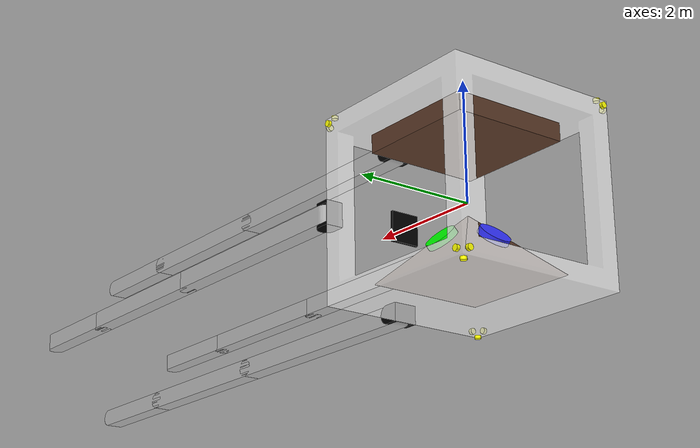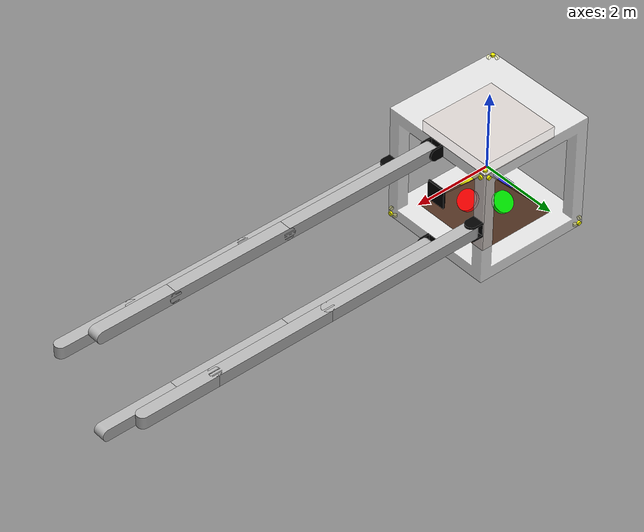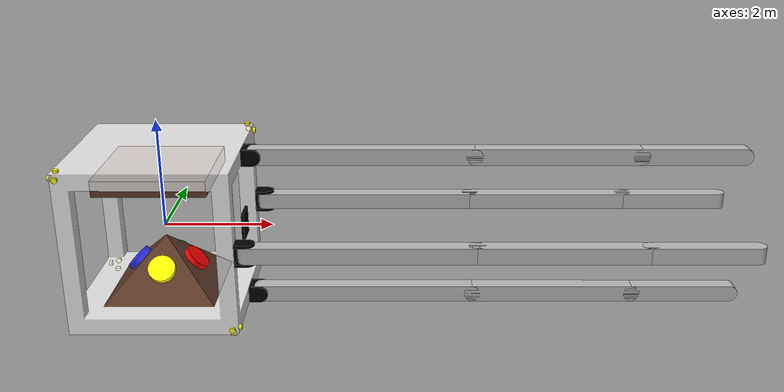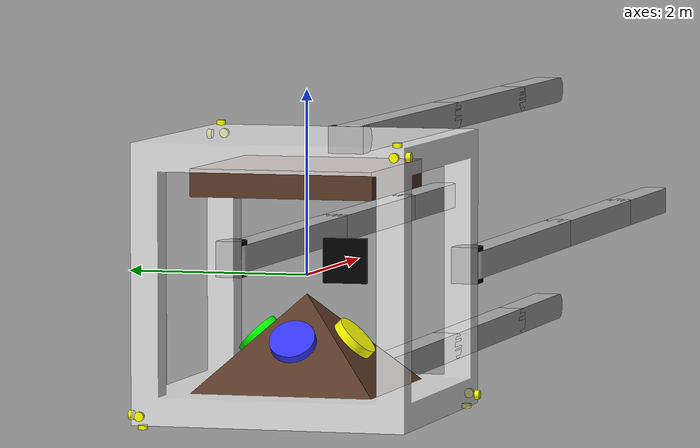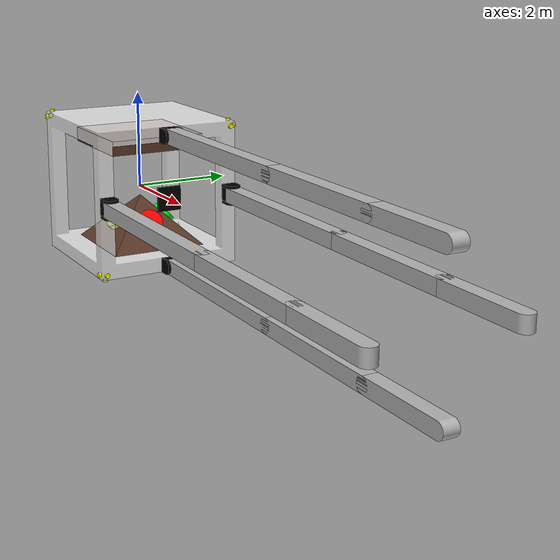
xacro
<?xml version="1.0"?>
<robot xmlns:xacro="http://www.ros.org/wiki/xacro" name="satellite">

  <xacro:include filename="$(find satellite_description)/xacro/common_properties.xacro"/>

  <xacro:property name="PI"                         value="3.1415926535897931"/>

  <plugin name="satellite_plugin" filename="libsatellite_plugin.so">
  </plugin>

  <link name="bus_frame">
    <inertial>
      <origin xyz="0 0 0" rpy="0 0 0"/>
      <mass value="${bus_frame_mass}"/>
      <inertia
              ixx="${(bus_frame_mass/6)*bus_frame_length*bus_frame_length}"
              iyy="${(bus_frame_mass/6)*bus_frame_length*bus_frame_length}"
              izz="${(bus_frame_mass/6)*bus_frame_length*bus_frame_length}"
              ixy="0.0" iyz="0.0" ixz="0.0"/>
    </inertial>
    <visual>
      <origin xyz="0.0 0.0 0.0" rpy="0 0 0"/>
      <geometry>
        <mesh filename="file://$(find satellite_description)/meshes/bus_frame.stl" scale="1 1 1"/>
      </geometry>
      <material name="white"/>
    </visual>
    <collision>
      <origin xyz="0.0 0.0 0.0" rpy="0 0 0"/>
      <geometry>
        <mesh filename="file://$(find satellite_description)/meshes/bus_frame.stl" scale="1 1 1"/>
      </geometry>
    </collision>
  </link>
  <link name="rw_mount">
    <inertial>
      <origin xyz="0 0 0" rpy="0 0 0"/>
      <mass value="${rw_mount_mass}"/>
      <inertia ixx="${(rw_mount_mass/20)*(4*rw_mount_height*rw_mount_height+rw_mount_width*rw_mount_width)}"
              iyy="${(rw_mount_mass/20)*(4*rw_mount_height*rw_mount_height+rw_mount_width*rw_mount_width)}"
              izz="${(rw_mount_mass/10)*(rw_mount_width*rw_mount_width)}"
              ixy="0.0" iyz="0.0" ixz="0.0"/>
    </inertial>
    <visual>
      <origin xyz="0.0 0.0 0.0" rpy="0 0 0"/>
      <geometry>
        <mesh filename="file://$(find satellite_description)/meshes/reaction_wheel_mount.stl" scale="1 1 1"/>
      </geometry>
      <material name="brown"/>
    </visual>
    <collision>
      <origin xyz="0.0 0.0 0.0" rpy="0 0 0"/>
      <geometry>
        <mesh filename="file://$(find satellite_description)/meshes/reaction_wheel_mount.stl" scale="1 1 1"/>
      </geometry>
    </collision>
  </link>
  <joint name="rw_mount_joint" type="fixed">
    <origin xyz="0 0 -${rw_mount_height-bus_frame_thickness}" rpy="0.0 0.0 0.0"/>
    <parent link="bus_frame"/>
    <child link="rw_mount"/>
  </joint>
  <link name="rw_front">
    <inertial>
      <origin xyz="0 0 0" rpy="0 0 0"/>
      <mass value="${rw_mass}"/>
      <inertia ixx="${(rw_mass/12)*(3*rw_radius*rw_radius+rw_height*rw_height)}"
              iyy="${(rw_mass/12)*(3*rw_radius*rw_radius+rw_height*rw_height)}"
              izz="${(rw_mass/2)*rw_radius*rw_radius}"
              ixy="0.0" iyz="0.0" ixz="0.0"/>
    </inertial>
    <visual>
      <origin xyz="0.0 0.0 0.0" rpy="0 0 0"/>
      <geometry>
        <mesh filename="file://$(find satellite_description)/meshes/reaction_wheel.stl" scale="1 1 1"/>
      </geometry>
      <material name="red"/>
    </visual>
    <collision>
      <origin xyz="0.0 0.0 0.0" rpy="0 0 0"/>
      <geometry>
        <mesh filename="file://$(find satellite_description)/meshes/reaction_wheel.stl" scale="1 1 1"/>
      </geometry>
    </collision>
  </link>
  <joint name="rw_front_joint" type="continuous">
    <origin xyz="${rw_mount_width/4} 0 0" rpy="0.0 ${pi/4} 0.0"/>
    <parent link="rw_mount"/>
    <child link="rw_front"/>
    <axis xyz="0 0 1"/>
  </joint>
  <link name="rw_left">
    <inertial>
      <origin xyz="0 0 0" rpy="0 0 0"/>
      <mass value="${rw_mass}"/>
      <inertia ixx="${(rw_mass/12)*(3*rw_radius*rw_radius+rw_height*rw_height)}"
              iyy="${(rw_mass/12)*(3*rw_radius*rw_radius+rw_height*rw_height)}"
              izz="${(rw_mass/2)*rw_radius*rw_radius}"
              ixy="0.0" iyz="0.0" ixz="0.0"/>
    </inertial>
    <visual>
      <origin xyz="0.0 0.0 0.0" rpy="0 0 0"/>
      <geometry>
        <mesh filename="file://$(find satellite_description)/meshes/reaction_wheel.stl" scale="1 1 1"/>
      </geometry>
      <material name="green"/>
    </visual>
    <collision>
      <origin xyz="0.0 0.0 0.0" rpy="0 0 0"/>
      <geometry>
        <mesh filename="file://$(find satellite_description)/meshes/reaction_wheel.stl" scale="1 1 1"/>
      </geometry>
    </collision>
  </link>
  <joint name="rw_left_joint" type="continuous">
    <origin xyz="0 ${rw_mount_width/4} 0" rpy="-${pi/4} 0.0 0.0"/>
    <parent link="rw_mount"/>
    <child link="rw_left"/>
    <axis xyz="0 0 1"/>
  </joint>
  <link name="rw_back">
    <inertial>
      <origin xyz="0 0 0" rpy="0 0 0"/>
      <mass value="${rw_mass}"/>
      <inertia ixx="${(rw_mass/12)*(3*rw_radius*rw_radius+rw_height*rw_height)}"
              iyy="${(rw_mass/12)*(3*rw_radius*rw_radius+rw_height*rw_height)}"
              izz="${(rw_mass/2)*rw_radius*rw_radius}"
              ixy="0.0" iyz="0.0" ixz="0.0"/>
    </inertial>
    <visual>
      <origin xyz="0.0 0.0 0.0" rpy="0 0 0"/>
      <geometry>
        <mesh filename="file://$(find satellite_description)/meshes/reaction_wheel.stl" scale="1 1 1"/>
      </geometry>
      <material name="blue"/>
    </visual>
    <collision>
      <origin xyz="0.0 0.0 0.0" rpy="0 0 0"/>
      <geometry>
        <mesh filename="file://$(find satellite_description)/meshes/reaction_wheel.stl" scale="1 1 1"/>
      </geometry>
    </collision>
  </link>
  <joint name="rw_back_joint" type="continuous">
    <origin xyz="-${rw_mount_width/4} 0 0" rpy="0.0 -${pi/4} 0.0"/>
    <parent link="rw_mount"/>
    <child link="rw_back"/>
    <axis xyz="0 0 1"/>
  </joint>
  <link name="rw_right">
    <inertial>
      <origin xyz="0 0 0" rpy="0 0 0"/>
      <mass value="${rw_mass}"/>
      <inertia ixx="${(rw_mass/12)*(3*rw_radius*rw_radius+rw_height*rw_height)}"
              iyy="${(rw_mass/12)*(3*rw_radius*rw_radius+rw_height*rw_height)}"
              izz="${(rw_mass/2)*rw_radius*rw_radius}"
              ixy="0.0" iyz="0.0" ixz="0.0"/>
    </inertial>
    <visual>
      <origin xyz="0.0 0.0 0.0" rpy="0 0 0"/>
      <geometry>
        <mesh filename="file://$(find satellite_description)/meshes/reaction_wheel.stl" scale="1 1 1"/>
      </geometry>
      <material name="yellow"/>
    </visual>
    <collision>
      <origin xyz="0.0 0.0 0.0" rpy="0 0 0"/>
      <geometry>
        <mesh filename="file://$(find satellite_description)/meshes/reaction_wheel.stl" scale="1 1 1"/>
      </geometry>
    </collision>
  </link>
  <joint name="rw_right_joint" type="continuous">
    <origin xyz="0 -${rw_mount_width/4} 0" rpy="${pi/4} 0.0 0.0"/>
    <parent link="rw_mount"/>
    <child link="rw_right"/>
    <axis xyz="0 0 1"/>
  </joint>
  <link name="dummy">
    <inertial>
      <origin xyz="0 0 0" rpy="0 0 0"/>
      <mass value="${dummy_mass}"/>
      <inertia
              ixx="${(dummy_mass/12)*(dummy_width*dummy_width+dummy_height*dummy_height)}"
              iyy="${(dummy_mass/12)*(dummy_width*dummy_width+dummy_height*dummy_height)}"
              izz="${(dummy_mass/12)*(dummy_width*dummy_width+dummy_width*dummy_width)}"
              ixy="0.0" iyz="0.0" ixz="0.0"/>
    </inertial>
    <visual>
      <origin xyz="0.0 0.0 0.0" rpy="0 0 0"/>
      <geometry>
        <mesh filename="file://$(find satellite_description)/meshes/dummy.stl" scale="1 1 1"/>
      </geometry>
      <material name="brown"/>
    </visual>
    <collision>
      <origin xyz="0.0 0.0 0.0" rpy="0 0 0"/>
      <geometry>
        <mesh filename="file://$(find satellite_description)/meshes/dummy.stl" scale="1 1 1"/>
      </geometry>
    </collision>
  </link>
  <joint name="dummy_joint" type="fixed">
    <origin xyz="0 0 ${bus_frame_length/2-bus_frame_thickness-dummy_height/2}" rpy="0 0.0 0.0"/>
    <parent link="bus_frame"/>
    <child link="dummy"/>
  </joint>
  <link name="thru_1">
    <inertial>
      <origin xyz="0 0 0" rpy="0 0 0"/>
      <mass value="${thruster_mass}"/>
      <inertia
        ixx="${(thruster_mass/12)*(3*thruster_radius*thruster_radius+thruster_height*thruster_height)}"
        iyy="${(thruster_mass/12)*(3*thruster_radius*thruster_radius+thruster_height*thruster_height)}"
        izz="${(thruster_mass/2)*thruster_radius*thruster_radius}"
        ixy="0.0" iyz="0.0" ixz="0.0"/>
    </inertial>
    <visual>
      <origin xyz="0.0 0.0 0.0" rpy="0 0 0"/>
      <geometry>
        <mesh filename="file://$(find satellite_description)/meshes/thruster.stl" scale="1 1 1"/>
      </geometry>
      <material name="yellow"/>
    </visual>
    <collision>
      <origin xyz="0.0 0.0 0.0" rpy="0 0 0"/>
      <geometry>
        <mesh filename="file://$(find satellite_description)/meshes/thruster.stl" scale="1 1 1"/>
      </geometry>
    </collision>
  </link>
  <joint name="thru_1_joint" type="fixed">
    <origin xyz=" ${bus_frame_length/2+thruster_height/2}
                  ${bus_frame_length/2-thruster_bias}
                  ${bus_frame_length/2-thruster_bias}"
            rpy="0.0 ${pi/2} 0.0"/>
    <parent link="bus_frame"/>
    <child link="thru_1"/>
  </joint>
  <link name="thru_2">
    <inertial>
      <origin xyz="0 0 0" rpy="0 0 0"/>
      <mass value="${thruster_mass}"/>
      <inertia
        ixx="${(thruster_mass/12)*(3*thruster_radius*thruster_radius+thruster_height*thruster_height)}"
        iyy="${(thruster_mass/12)*(3*thruster_radius*thruster_radius+thruster_height*thruster_height)}"
        izz="${(thruster_mass/2)*thruster_radius*thruster_radius}"
        ixy="0.0" iyz="0.0" ixz="0.0"/>
    </inertial>
    <visual>
      <origin xyz="0.0 0.0 0.0" rpy="0 0 0"/>
      <geometry>
        <mesh filename="file://$(find satellite_description)/meshes/thruster.stl" scale="1 1 1"/>
      </geometry>
      <material name="yellow"/>
    </visual>
    <collision>
      <origin xyz="0.0 0.0 0.0" rpy="0 0 0"/>
      <geometry>
        <mesh filename="file://$(find satellite_description)/meshes/thruster.stl" scale="1 1 1"/>
      </geometry>
    </collision>
  </link>
  <joint name="thru_2_joint" type="fixed">
    <origin xyz=" ${bus_frame_length/2-thruster_bias}
                  ${bus_frame_length/2+thruster_height/2}
                  ${bus_frame_length/2-thruster_bias}"
            rpy="0.0 ${pi/2} ${pi/2}"/>
    <parent link="bus_frame"/>
    <child link="thru_2"/>
  </joint>
  <link name="thru_3">
    <inertial>
      <origin xyz="0 0 0" rpy="0 0 0"/>
      <mass value="${thruster_mass}"/>
      <inertia
        ixx="${(thruster_mass/12)*(3*thruster_radius*thruster_radius+thruster_height*thruster_height)}"
        iyy="${(thruster_mass/12)*(3*thruster_radius*thruster_radius+thruster_height*thruster_height)}"
        izz="${(thruster_mass/2)*thruster_radius*thruster_radius}"
        ixy="0.0" iyz="0.0" ixz="0.0"/>
    </inertial>
    <visual>
      <origin xyz="0.0 0.0 0.0" rpy="0 0 0"/>
      <geometry>
        <mesh filename="file://$(find satellite_description)/meshes/thruster.stl" scale="1 1 1"/>
      </geometry>
      <material name="yellow"/>
    </visual>
    <collision>
      <origin xyz="0.0 0.0 0.0" rpy="0 0 0"/>
      <geometry>
        <mesh filename="file://$(find satellite_description)/meshes/thruster.stl" scale="1 1 1"/>
      </geometry>
    </collision>
  </link>
  <joint name="thru_3_joint" type="fixed">
    <origin xyz=" ${bus_frame_length/2-thruster_bias}
                  ${bus_frame_length/2-thruster_bias}
                  ${bus_frame_length/2+thruster_height/2}"
            rpy="0.0 0.0 0.0"/>
    <parent link="bus_frame"/>
    <child link="thru_3"/>
  </joint>
  <link name="thru_4">
    <inertial>
      <origin xyz="0 0 0" rpy="0 0 0"/>
      <mass value="${thruster_mass}"/>
      <inertia
        ixx="${(thruster_mass/12)*(3*thruster_radius*thruster_radius+thruster_height*thruster_height)}"
        iyy="${(thruster_mass/12)*(3*thruster_radius*thruster_radius+thruster_height*thruster_height)}"
        izz="${(thruster_mass/2)*thruster_radius*thruster_radius}"
        ixy="0.0" iyz="0.0" ixz="0.0"/>
    </inertial>
    <visual>
      <origin xyz="0.0 0.0 0.0" rpy="0 0 0"/>
      <geometry>
        <mesh filename="file://$(find satellite_description)/meshes/thruster.stl" scale="1 1 1"/>
      </geometry>
      <material name="yellow"/>
    </visual>
    <collision>
      <origin xyz="0.0 0.0 0.0" rpy="0 0 0"/>
      <geometry>
        <mesh filename="file://$(find satellite_description)/meshes/thruster.stl" scale="1 1 1"/>
      </geometry>
    </collision>
  </link>
  <joint name="thru_4_joint" type="fixed">
    <origin xyz=" -${bus_frame_length/2+thruster_height/2}
                  ${bus_frame_length/2-thruster_bias}
                  -${bus_frame_length/2-thruster_bias}"

            rpy="0.0 -${pi/2} 0.0"/>
    <parent link="bus_frame"/>
    <child link="thru_4"/>
  </joint>
  <link name="thru_5">
    <inertial>
      <origin xyz="0 0 0" rpy="0 0 0"/>
      <mass value="${thruster_mass}"/>
      <inertia
        ixx="${(thruster_mass/12)*(3*thruster_radius*thruster_radius+thruster_height*thruster_height)}"
        iyy="${(thruster_mass/12)*(3*thruster_radius*thruster_radius+thruster_height*thruster_height)}"
        izz="${(thruster_mass/2)*thruster_radius*thruster_radius}"
        ixy="0.0" iyz="0.0" ixz="0.0"/>
    </inertial>
    <visual>
      <origin xyz="0.0 0.0 0.0" rpy="0 0 0"/>
      <geometry>
        <mesh filename="file://$(find satellite_description)/meshes/thruster.stl" scale="1 1 1"/>
      </geometry>
      <material name="yellow"/>
    </visual>
    <collision>
      <origin xyz="0.0 0.0 0.0" rpy="0 0 0"/>
      <geometry>
        <mesh filename="file://$(find satellite_description)/meshes/thruster.stl" scale="1 1 1"/>
      </geometry>
    </collision>
  </link>
  <joint name="thru_5_joint" type="fixed">
    <origin xyz=" -${bus_frame_length/2-thruster_bias}
                  ${bus_frame_length/2+thruster_height/2}
                  -${bus_frame_length/2-thruster_bias}"

            rpy="-${pi/2} 0.0 0.0"/>
    <parent link="bus_frame"/>
    <child link="thru_5"/>
  </joint>
  <link name="thru_6">
    <inertial>
      <origin xyz="0 0 0" rpy="0 0 0"/>
      <mass value="${thruster_mass}"/>
      <inertia
        ixx="${(thruster_mass/12)*(3*thruster_radius*thruster_radius+thruster_height*thruster_height)}"
        iyy="${(thruster_mass/12)*(3*thruster_radius*thruster_radius+thruster_height*thruster_height)}"
        izz="${(thruster_mass/2)*thruster_radius*thruster_radius}"
        ixy="0.0" iyz="0.0" ixz="0.0"/>
    </inertial>
    <visual>
      <origin xyz="0.0 0.0 0.0" rpy="0 0 0"/>
      <geometry>
        <mesh filename="file://$(find satellite_description)/meshes/thruster.stl" scale="1 1 1"/>
      </geometry>
      <material name="yellow"/>
    </visual>
    <collision>
      <origin xyz="0.0 0.0 0.0" rpy="0 0 0"/>
      <geometry>
        <mesh filename="file://$(find satellite_description)/meshes/thruster.stl" scale="1 1 1"/>
      </geometry>
    </collision>
  </link>
  <joint name="thru_6_joint" type="fixed">
    <origin xyz=" -${bus_frame_length/2-thruster_bias}
                  ${bus_frame_length/2-thruster_bias}
                  -${bus_frame_length/2+thruster_height/2}"
            rpy="0.0 -${pi} 0.0"/>
    <parent link="bus_frame"/>
    <child link="thru_6"/>
  </joint>
  <link name="thru_7">
    <inertial>
      <origin xyz="0 0 0" rpy="0 0 0"/>
      <mass value="${thruster_mass}"/>
      <inertia
        ixx="${(thruster_mass/12)*(3*thruster_radius*thruster_radius+thruster_height*thruster_height)}"
        iyy="${(thruster_mass/12)*(3*thruster_radius*thruster_radius+thruster_height*thruster_height)}"
        izz="${(thruster_mass/2)*thruster_radius*thruster_radius}"
        ixy="0.0" iyz="0.0" ixz="0.0"/>
    </inertial>
    <visual>
      <origin xyz="0.0 0.0 0.0" rpy="0 0 0"/>
      <geometry>
        <mesh filename="file://$(find satellite_description)/meshes/thruster.stl" scale="1 1 1"/>
      </geometry>
      <material name="yellow"/>
    </visual>
    <collision>
      <origin xyz="0.0 0.0 0.0" rpy="0 0 0"/>
      <geometry>
        <mesh filename="file://$(find satellite_description)/meshes/thruster.stl" scale="1 1 1"/>
      </geometry>
    </collision>
  </link>
  <joint name="thru_7_joint" type="fixed">
    <origin xyz=" -${bus_frame_length/2+thruster_height/2}
                  -${bus_frame_length/2-thruster_bias}
                  ${bus_frame_length/2-thruster_bias}
                  "
            rpy="0.0 -${pi/2} 0.0"/>
    <parent link="bus_frame"/>
    <child link="thru_7"/>
  </joint>
  <link name="thru_8">
    <inertial>
      <origin xyz="0 0 0" rpy="0 0 0"/>
      <mass value="${thruster_mass}"/>
      <inertia
        ixx="${(thruster_mass/12)*(3*thruster_radius*thruster_radius+thruster_height*thruster_height)}"
        iyy="${(thruster_mass/12)*(3*thruster_radius*thruster_radius+thruster_height*thruster_height)}"
        izz="${(thruster_mass/2)*thruster_radius*thruster_radius}"
        ixy="0.0" iyz="0.0" ixz="0.0"/>
    </inertial>
    <visual>
      <origin xyz="0.0 0.0 0.0" rpy="0 0 0"/>
      <geometry>
        <mesh filename="file://$(find satellite_description)/meshes/thruster.stl" scale="1 1 1"/>
      </geometry>
      <material name="yellow"/>
    </visual>
    <collision>
      <origin xyz="0.0 0.0 0.0" rpy="0 0 0"/>
      <geometry>
        <mesh filename="file://$(find satellite_description)/meshes/thruster.stl" scale="1 1 1"/>
      </geometry>
    </collision>
  </link>
  <joint name="thru_8_joint" type="fixed">
    <origin xyz=" -${bus_frame_length/2-thruster_bias}
                  -${bus_frame_length/2+thruster_height/2}
                  ${bus_frame_length/2-thruster_bias}
                  "
            rpy="${pi/2} 0.0 0.0"/>
    <parent link="bus_frame"/>
    <child link="thru_8"/>
  </joint>
  <link name="thru_9">
    <inertial>
      <origin xyz="0 0 0" rpy="0 0 0"/>
      <mass value="${thruster_mass}"/>
      <inertia
        ixx="${(thruster_mass/12)*(3*thruster_radius*thruster_radius+thruster_height*thruster_height)}"
        iyy="${(thruster_mass/12)*(3*thruster_radius*thruster_radius+thruster_height*thruster_height)}"
        izz="${(thruster_mass/2)*thruster_radius*thruster_radius}"
        ixy="0.0" iyz="0.0" ixz="0.0"/>
    </inertial>
    <visual>
      <origin xyz="0.0 0.0 0.0" rpy="0 0 0"/>
      <geometry>
        <mesh filename="file://$(find satellite_description)/meshes/thruster.stl" scale="1 1 1"/>
      </geometry>
      <material name="yellow"/>
    </visual>
    <collision>
      <origin xyz="0.0 0.0 0.0" rpy="0 0 0"/>
      <geometry>
        <mesh filename="file://$(find satellite_description)/meshes/thruster.stl" scale="1 1 1"/>
      </geometry>
    </collision>
  </link>
  <joint name="thru_9_joint" type="fixed">
    <origin xyz=" -${bus_frame_length/2-thruster_bias}
                  -${bus_frame_length/2-thruster_bias}
                  ${bus_frame_length/2+thruster_height/2}
                  "
            rpy="0 0.0 0.0"/>
    <parent link="bus_frame"/>
    <child link="thru_9"/>
  </joint>
  <link name="thru_10">
    <inertial>
      <origin xyz="0 0 0" rpy="0 0 0"/>
      <mass value="${thruster_mass}"/>
      <inertia
        ixx="${(thruster_mass/12)*(3*thruster_radius*thruster_radius+thruster_height*thruster_height)}"
        iyy="${(thruster_mass/12)*(3*thruster_radius*thruster_radius+thruster_height*thruster_height)}"
        izz="${(thruster_mass/2)*thruster_radius*thruster_radius}"
        ixy="0.0" iyz="0.0" ixz="0.0"/>
    </inertial>
    <visual>
      <origin xyz="0.0 0.0 0.0" rpy="0 0 0"/>
      <geometry>
        <mesh filename="file://$(find satellite_description)/meshes/thruster.stl" scale="1 1 1"/>
      </geometry>
      <material name="yellow"/>
    </visual>
    <collision>
      <origin xyz="0.0 0.0 0.0" rpy="0 0 0"/>
      <geometry>
        <mesh filename="file://$(find satellite_description)/meshes/thruster.stl" scale="1 1 1"/>
      </geometry>
    </collision>
  </link>
  <joint name="thru_10_joint" type="fixed">
    <origin xyz=" ${bus_frame_length/2+thruster_height/2}
                  -${bus_frame_length/2-thruster_bias}
                  -${bus_frame_length/2-thruster_bias}
                  "
            rpy="0.0 ${pi/2} 0.0"/>
    <parent link="bus_frame"/>
    <child link="thru_10"/>
  </joint>
  <link name="thru_11">
    <inertial>
      <origin xyz="0 0 0" rpy="0 0 0"/>
      <mass value="${thruster_mass}"/>
      <inertia
        ixx="${(thruster_mass/12)*(3*thruster_radius*thruster_radius+thruster_height*thruster_height)}"
        iyy="${(thruster_mass/12)*(3*thruster_radius*thruster_radius+thruster_height*thruster_height)}"
        izz="${(thruster_mass/2)*thruster_radius*thruster_radius}"
        ixy="0.0" iyz="0.0" ixz="0.0"/>
    </inertial>
    <visual>
      <origin xyz="0.0 0.0 0.0" rpy="0 0 0"/>
      <geometry>
        <mesh filename="file://$(find satellite_description)/meshes/thruster.stl" scale="1 1 1"/>
      </geometry>
      <material name="yellow"/>
    </visual>
    <collision>
      <origin xyz="0.0 0.0 0.0" rpy="0 0 0"/>
      <geometry>
        <mesh filename="file://$(find satellite_description)/meshes/thruster.stl" scale="1 1 1"/>
      </geometry>
    </collision>
  </link>
  <joint name="thru_11_joint" type="fixed">
    <origin xyz=" ${bus_frame_length/2-thruster_bias}
                  -${bus_frame_length/2+thruster_height/2}
                  -${bus_frame_length/2-thruster_bias}
                  "
            rpy="${pi/2} 0.0 0.0"/>
    <parent link="bus_frame"/>
    <child link="thru_11"/>
  </joint>
  <link name="thru_12">
    <inertial>
      <origin xyz="0 0 0" rpy="0 0 0"/>
      <mass value="${thruster_mass}"/>
      <inertia
        ixx="${(thruster_mass/12)*(3*thruster_radius*thruster_radius+thruster_height*thruster_height)}"
        iyy="${(thruster_mass/12)*(3*thruster_radius*thruster_radius+thruster_height*thruster_height)}"
        izz="${(thruster_mass/2)*thruster_radius*thruster_radius}"
        ixy="0.0" iyz="0.0" ixz="0.0"/>
    </inertial>
    <visual>
      <origin xyz="0.0 0.0 0.0" rpy="0 0 0"/>
      <geometry>
        <mesh filename="file://$(find satellite_description)/meshes/thruster.stl" scale="1 1 1"/>
      </geometry>
      <material name="yellow"/>
    </visual>
    <collision>
      <origin xyz="0.0 0.0 0.0" rpy="0 0 0"/>
      <geometry>
        <mesh filename="file://$(find satellite_description)/meshes/thruster.stl" scale="1 1 1"/>
      </geometry>
    </collision>
  </link>
  <joint name="thru_12_joint" type="fixed">
    <origin xyz=" ${bus_frame_length/2-thruster_bias}
                  -${bus_frame_length/2-thruster_bias}
                  -${bus_frame_length/2+thruster_height/2}
                  "
            rpy="0.0 ${pi} 0.0"/>
    <parent link="bus_frame"/>
    <child link="thru_12"/>
  </joint>
  <link name="window_front">
    <inertial>
      <origin xyz="0 0 0" rpy="0 0 0"/>
      <mass value="${window_mass}"/>
      <inertia
          ixx="${(window_mass/12)*(window_length*window_length+window_length*window_length)}"
          iyy="${(window_mass/12)*(window_length*window_length+window_thickness*window_thickness)}"
          izz="${(window_mass/12)*(window_length*window_length+window_thickness*window_thickness)}"
          ixy="0.0" iyz="0.0" ixz="0.0"/>
    </inertial>
    <collision>
      <origin xyz="0.0 0.0 0.0" rpy="0 0 0"/>
      <geometry>
        <mesh filename="file://$(find satellite_description)/meshes/window.stl" scale="1 1 1"/>
      </geometry>
    </collision>
  </link>
  <joint name="window_front_joint" type="fixed">
    <origin xyz="${bus_frame_length/2-window_thickness/2}
                  0.0
                  0.0"
            rpy="0.0 0.0 0.0"/>
    <parent link="bus_frame"/>
    <child link="window_front"/>
  </joint>
  <link name="window_left">
    <inertial>
      <origin xyz="0 0 0" rpy="0 0 0"/>
      <mass value="${window_mass}"/>
      <inertia
          ixx="${(window_mass/12)*(window_length*window_length+window_length*window_length)}"
          iyy="${(window_mass/12)*(window_length*window_length+window_thickness*window_thickness)}"
          izz="${(window_mass/12)*(window_length*window_length+window_thickness*window_thickness)}"
          ixy="0.0" iyz="0.0" ixz="0.0"/>
    </inertial>
    <collision>
      <origin xyz="0.0 0.0 0.0" rpy="0 0 0"/>
      <geometry>
        <mesh filename="file://$(find satellite_description)/meshes/window.stl" scale="1 1 1"/>
      </geometry>
    </collision>
  </link>
  <joint name="window_left_joint" type="fixed">
    <origin xyz=" 0.0
                  ${bus_frame_length/2-window_thickness/2}
                  0.0"
            rpy="0.0 0.0 ${pi/2}"/>
    <parent link="bus_frame"/>
    <child link="window_left"/>
  </joint>
  <link name="window_back">
    <inertial>
      <origin xyz="0 0 0" rpy="0 0 0"/>
      <mass value="${window_mass}"/>
      <inertia
          ixx="${(window_mass/12)*(window_length*window_length+window_length*window_length)}"
          iyy="${(window_mass/12)*(window_length*window_length+window_thickness*window_thickness)}"
          izz="${(window_mass/12)*(window_length*window_length+window_thickness*window_thickness)}"
          ixy="0.0" iyz="0.0" ixz="0.0"/>
    </inertial>
    <collision>
      <origin xyz="0.0 0.0 0.0" rpy="0 0 0"/>
      <geometry>
        <mesh filename="file://$(find satellite_description)/meshes/window.stl" scale="1 1 1"/>
      </geometry>
    </collision>
  </link>
  <joint name="window_back_joint" type="fixed">
    <origin xyz=" -${bus_frame_length/2-window_thickness/2}
                  0.0
                  0.0"
            rpy="0.0 0.0 ${pi}"/>
    <parent link="bus_frame" />
    <child link="window_back"/>
  </joint>
  <link name="window_right">
    <inertial>
      <origin xyz="0 0 0" rpy="0 0 0"/>
      <mass value="${window_mass}"/>
      <inertia
          ixx="${(window_mass/12)*(window_length*window_length+window_length*window_length)}"
          iyy="${(window_mass/12)*(window_length*window_length+window_thickness*window_thickness)}"
          izz="${(window_mass/12)*(window_length*window_length+window_thickness*window_thickness)}"
          ixy="0.0" iyz="0.0" ixz="0.0"/>
    </inertial>
    <collision>
      <origin xyz="0.0 0.0 0.0" rpy="0 0 0"/>
      <geometry>
        <mesh filename="file://$(find satellite_description)/meshes/window.stl" scale="1 1 1"/>
      </geometry>
    </collision>
  </link>
  <joint name="window_right_joint" type="fixed">
    <origin xyz=" 0.0
                  -${bus_frame_length/2-window_thickness/2}
                  0.0"
            rpy="0.0 0.0 -${pi/2}"/>
    <parent link="bus_frame" />
    <child link="window_right"/>
  </joint>
  <link name="bus_camera">
    <inertial>
      <origin xyz="0 0 0" rpy="0 0 0"/>
      <mass value="${bus_camera_mass}"/>
      <inertia
          ixx="${(bus_camera_mass/12)*(bus_camera_length*bus_camera_length+bus_camera_height*bus_camera_height)}"
          iyy="${(bus_camera_mass/12)*(bus_camera_length*bus_camera_length+bus_camera_height*bus_camera_height)}"
          izz="${(bus_camera_mass/12)*(bus_camera_length*bus_camera_length+bus_camera_length*bus_camera_length)}"
          ixy="0.0" iyz="0.0" ixz="0.0"/>
    </inertial>
    <visual>
      <origin xyz="0.0 0.0 0.0" rpy="0 0 0"/>
      <geometry>
        <mesh filename="file://$(find satellite_description)/meshes/bus_camera.stl" scale="1 1 1"/>
      </geometry>
      <material name="black"/>
    </visual>
    <collision>
      <origin xyz="0.0 0.0 0.0" rpy="0 0 0"/>
      <geometry>
        <mesh filename="file://$(find satellite_description)/meshes/bus_camera.stl" scale="1 1 1"/>
      </geometry>
    </collision>
  </link>
  <joint name="bus_camera_joint" type="revolute">
    <origin xyz=" ${window_thickness/2-bus_camera_height/2}
                  0.0
                  0.0"
            rpy="0.0 0.0 0.0"/>
    <limit effort="25" lower="-${pi/2}" upper="${pi/2}" velocity="1.5" />
    <axis xyz="0.0 0.0 -1.0"/>
    <parent link="window_front" />
    <child link="bus_camera"/>
  </joint>
  <link name="arm_mount_top">
    <inertial>
      <origin xyz="0 0 0" rpy="0 0 0"/>
      <mass value="${arm_mount_mass}"/>
      <inertia
          ixx="${arm_mount_ixx}"
          iyy="${arm_mount_iyy}"
          izz="${arm_mount_izz}"
          ixy="0.0" iyz="0.0" ixz="0.0"/>
    </inertial>
    <visual>
      <origin xyz="0.0 0.0 0.0" rpy="0 0 0"/>
      <geometry>
        <mesh filename="file://$(find satellite_description)/meshes/arm_mount.stl" scale="1 1 1"/>
      </geometry>
      <material name="black"/>
    </visual>
    <collision>
      <origin xyz="0.0 0.0 0.0" rpy="0 0 0"/>
      <geometry>
        <mesh filename="file://$(find satellite_description)/meshes/arm_mount.stl" scale="1 1 1"/>
      </geometry>
    </collision>
  </link>
  <joint name="arm_mount_top_joint" type="fixed">
    <origin xyz=" ${bus_frame_length/2+arm_mount_bias}
                  0.0
                  ${bus_frame_length/2-bus_frame_thickness/2}"
            rpy="${pi/2} 0.0 0.0"/>
    <parent link="bus_frame" />
    <child link="arm_mount_top"/>
  </joint>
  <link name="arm_link_1_top">
    <inertial>
      <origin xyz="0 0 0" rpy="0 0 0"/>
      <mass value="${arm_link_1_mass}"/>
      <inertia
          ixx="${arm_link_1_ixx}"
          iyy="${arm_link_1_iyy}"
          izz="${arm_link_1_izz}"
          ixy="0.0" iyz="0.0" ixz="0.0"/>
    </inertial>
    <visual>
      <origin xyz="0.0 0.0 0.0" rpy="0 0 0"/>
      <geometry>
        <mesh filename="file://$(find satellite_description)/meshes/arm_link_1.stl" scale="1 1 1"/>
      </geometry>
      <material name="grey"/>
    </visual>
    <collision>
      <origin xyz="0.0 0.0 0.0" rpy="0 0 0"/>
      <geometry>
        <mesh filename="file://$(find satellite_description)/meshes/arm_link_1.stl" scale="1 1 1"/>
      </geometry>
    </collision>
  </link>
  <joint name="arm_link_1_top_joint" type="revolute">
    <origin xyz=" ${arm_mount_bias}
                  0.0
                  0.0"
            rpy="0.0 0.0 0.0"/>
    <parent link="arm_mount_top" />
    <child link="arm_link_1_top"/>
    <limit effort="25" lower="-${pi/2}" upper="${pi/2}" velocity="1.5" />
    <axis xyz="0.0 0.0 -1.0"/>
  </joint>
  <link name="arm_link_2_top">
    <inertial>
      <origin xyz="0 0 0" rpy="0 0 0"/>
      <mass value="${arm_link_2_mass}"/>
      <inertia
          ixx="${arm_link_2_ixx}"
          iyy="${arm_link_2_iyy}"
          izz="${arm_link_2_izz}"
          ixy="0.0" iyz="0.0" ixz="0.0"/>
    </inertial>
    <visual>
      <origin xyz="0.0 0.0 0.0" rpy="0 0 0"/>
      <geometry>
        <mesh filename="file://$(find satellite_description)/meshes/arm_link_2.stl" scale="1 1 1"/>
      </geometry>
      <material name="grey"/>
    </visual>
    <collision>
      <origin xyz="0.0 0.0 0.0" rpy="0 0 0"/>
      <geometry>
        <mesh filename="file://$(find satellite_description)/meshes/arm_link_2.stl" scale="1 1 1"/>
      </geometry>
    </collision>
  </link>
  <joint name="arm_link_2_top_joint" type="revolute">
    <origin xyz=" ${arm_link_1_length}
                  0.0
                  0.0"
            rpy="0.0 0.0 0.0"/>
    <parent link="arm_link_1_top" />
    <child link="arm_link_2_top"/>
    <limit effort="25" lower="-${pi/2}" upper="${pi/2}" velocity="1.5" />
    <axis xyz="0.0 0.0 -1.0"/>
  </joint>
  <link name="arm_link_3_top">
    <inertial>
      <origin xyz="0 0 0" rpy="0 0 0"/>
      <mass value="${arm_link_3_mass}"/>
      <inertia
          ixx="${arm_link_3_ixx}"
          iyy="${arm_link_3_iyy}"
          izz="${arm_link_3_izz}"
          ixy="0.0" iyz="0.0" ixz="0.0"/>
    </inertial>
    <visual>
      <origin xyz="0.0 0.0 0.0" rpy="0 0 0"/>
      <geometry>
        <mesh filename="file://$(find satellite_description)/meshes/arm_link_3.stl" scale="1 1 1"/>
      </geometry>
      <material name="grey"/>
    </visual>
    <collision>
      <origin xyz="0.0 0.0 0.0" rpy="0 0 0"/>
      <geometry>
        <mesh filename="file://$(find satellite_description)/meshes/arm_link_3.stl" scale="1 1 1"/>
      </geometry>
    </collision>
  </link>
  <joint name="arm_link_3_top_joint" type="revolute">
    <origin xyz=" ${arm_link_2_length}
                  0.0
                  0.0"
            rpy="0.0 0.0 0.0"/>
    <parent link="arm_link_2_top" />
    <child link="arm_link_3_top"/>
    <limit effort="25" lower="-${pi/2}" upper="${pi/2}" velocity="1.5" />
    <axis xyz="0.0 0.0 -1.0"/>
  </joint>

  <link name="arm_mount_left">
    <inertial>
      <origin xyz="0 0 0" rpy="0 0 0"/>
      <mass value="${arm_mount_mass}"/>
      <inertia
          ixx="${arm_mount_ixx}"
          iyy="${arm_mount_iyy}"
          izz="${arm_mount_izz}"
          ixy="0.0" iyz="0.0" ixz="0.0"/>
    </inertial>
    <visual>
      <origin xyz="0.0 0.0 0.0" rpy="0 0 0"/>
      <geometry>
        <mesh filename="file://$(find satellite_description)/meshes/arm_mount.stl" scale="1 1 1"/>
      </geometry>
      <material name="black"/>
    </visual>
    <collision>
      <origin xyz="0.0 0.0 0.0" rpy="0 0 0"/>
      <geometry>
        <mesh filename="file://$(find satellite_description)/meshes/arm_mount.stl" scale="1 1 1"/>
      </geometry>
    </collision>
  </link>
  <joint name="arm_mount_left_joint" type="fixed">
    <origin xyz=" ${bus_frame_length/2+arm_mount_bias}
                  ${bus_frame_length/2-bus_frame_thickness/2}
                  0"
            rpy="0.0 0.0 0.0"/>
    <parent link="bus_frame" />
    <child link="arm_mount_left"/>
  </joint>
  <link name="arm_link_1_left">
    <inertial>
      <origin xyz="0 0 0" rpy="0 0 0"/>
      <mass value="${arm_link_1_mass}"/>
      <inertia
          ixx="${arm_link_1_ixx}"
          iyy="${arm_link_1_iyy}"
          izz="${arm_link_1_izz}"
          ixy="0.0" iyz="0.0" ixz="0.0"/>
    </inertial>
    <visual>
      <origin xyz="0.0 0.0 0.0" rpy="0 0 0"/>
      <geometry>
        <mesh filename="file://$(find satellite_description)/meshes/arm_link_1.stl" scale="1 1 1"/>
      </geometry>
      <material name="grey"/>
    </visual>
    <collision>
      <origin xyz="0.0 0.0 0.0" rpy="0 0 0"/>
      <geometry>
        <mesh filename="file://$(find satellite_description)/meshes/arm_link_1.stl" scale="1 1 1"/>
      </geometry>
    </collision>
  </link>
  <joint name="arm_link_1_left_joint" type="revolute">
    <origin xyz=" ${arm_mount_bias}
                  0.0
                  0.0"
            rpy="0.0 0.0 0.0"/>
    <parent link="arm_mount_left" />
    <child link="arm_link_1_left"/>
    <limit effort="25" lower="-${pi/2}" upper="${pi/2}" velocity="1.5" />
    <axis xyz="0.0 0.0 -1.0"/>
  </joint>
  <link name="arm_link_2_left">
    <inertial>
      <origin xyz="0 0 0" rpy="0 0 0"/>
      <mass value="${arm_link_2_mass}"/>
      <inertia
          ixx="${arm_link_2_ixx}"
          iyy="${arm_link_2_iyy}"
          izz="${arm_link_2_izz}"
          ixy="0.0" iyz="0.0" ixz="0.0"/>
    </inertial>
    <visual>
      <origin xyz="0.0 0.0 0.0" rpy="0 0 0"/>
      <geometry>
        <mesh filename="file://$(find satellite_description)/meshes/arm_link_2.stl" scale="1 1 1"/>
      </geometry>
      <material name="grey"/>
    </visual>
    <collision>
      <origin xyz="0.0 0.0 0.0" rpy="0 0 0"/>
      <geometry>
        <mesh filename="file://$(find satellite_description)/meshes/arm_link_2.stl" scale="1 1 1"/>
      </geometry>
    </collision>
  </link>
  <joint name="arm_link_2_left_joint" type="revolute">
    <origin xyz=" ${arm_link_1_length}
                  0.0
                  0.0"
            rpy="0.0 0.0 0.0"/>
    <parent link="arm_link_1_left" />
    <child link="arm_link_2_left"/>
    <limit effort="25" lower="-${pi/2}" upper="${pi/2}" velocity="1.5" />
    <axis xyz="0.0 0.0 -1.0"/>
  </joint>
  <link name="arm_link_3_left">
    <inertial>
      <origin xyz="0 0 0" rpy="0 0 0"/>
      <mass value="${arm_link_3_mass}"/>
      <inertia
          ixx="${arm_link_3_ixx}"
          iyy="${arm_link_3_iyy}"
          izz="${arm_link_3_izz}"
          ixy="0.0" iyz="0.0" ixz="0.0"/>
    </inertial>
    <visual>
      <origin xyz="0.0 0.0 0.0" rpy="0 0 0"/>
      <geometry>
        <mesh filename="file://$(find satellite_description)/meshes/arm_link_3.stl" scale="1 1 1"/>
      </geometry>
      <material name="grey"/>
    </visual>
    <collision>
      <origin xyz="0.0 0.0 0.0" rpy="0 0 0"/>
      <geometry>
        <mesh filename="file://$(find satellite_description)/meshes/arm_link_3.stl" scale="1 1 1"/>
      </geometry>
    </collision>
  </link>
  <joint name="arm_link_3_left_joint" type="revolute">
    <origin xyz=" ${arm_link_2_length}
                  0.0
                  0.0"
            rpy="0.0 0.0 0.0"/>
    <parent link="arm_link_2_left" />
    <child link="arm_link_3_left"/>
    <limit effort="25" lower="-${pi/2}" upper="${pi/2}" velocity="1.5" />
    <axis xyz="0.0 0.0 -1.0"/>
  </joint>
  <link name="arm_mount_right">
    <inertial>
      <origin xyz="0 0 0" rpy="0 0 0"/>
      <mass value="${arm_mount_mass}"/>
      <inertia
          ixx="${arm_mount_ixx}"
          iyy="${arm_mount_iyy}"
          izz="${arm_mount_izz}"
          ixy="0.0" iyz="0.0" ixz="0.0"/>
    </inertial>
    <visual>
      <origin xyz="0.0 0.0 0.0" rpy="0 0 0"/>
      <geometry>
        <mesh filename="file://$(find satellite_description)/meshes/arm_mount.stl" scale="1 1 1"/>
      </geometry>
      <material name="black"/>
    </visual>
    <collision>
      <origin xyz="0.0 0.0 0.0" rpy="0 0 0"/>
      <geometry>
        <mesh filename="file://$(find satellite_description)/meshes/arm_mount.stl" scale="1 1 1"/>
      </geometry>
    </collision>
  </link>
  <joint name="arm_mount_right_joint" type="fixed">
    <origin xyz=" ${bus_frame_length/2+arm_mount_bias}
                  -${bus_frame_length/2-bus_frame_thickness/2}
                  0"
            rpy="0.0 0.0 0.0"/>
    <parent link="bus_frame" />
    <child link="arm_mount_right"/>
  </joint>
  <link name="arm_link_1_right">
    <inertial>
      <origin xyz="0 0 0" rpy="0 0 0"/>
      <mass value="${arm_link_1_mass}"/>
      <inertia
          ixx="${arm_link_1_ixx}"
          iyy="${arm_link_1_iyy}"
          izz="${arm_link_1_izz}"
          ixy="0.0" iyz="0.0" ixz="0.0"/>
    </inertial>
    <visual>
      <origin xyz="0.0 0.0 0.0" rpy="0 0 0"/>
      <geometry>
        <mesh filename="file://$(find satellite_description)/meshes/arm_link_1.stl" scale="1 1 1"/>
      </geometry>
      <material name="grey"/>
    </visual>
    <collision>
      <origin xyz="0.0 0.0 0.0" rpy="0 0 0"/>
      <geometry>
        <mesh filename="file://$(find satellite_description)/meshes/arm_link_1.stl" scale="1 1 1"/>
      </geometry>
    </collision>
  </link>
  <joint name="arm_link_1_right_joint" type="revolute">
    <origin xyz=" ${arm_mount_bias}
                  0.0
                  0.0"
            rpy="0.0 0.0 0.0"/>
    <parent link="arm_mount_right" />
    <child link="arm_link_1_right"/>
    <limit effort="25" lower="-${pi/2}" upper="${pi/2}" velocity="1.5" />
    <axis xyz="0.0 0.0 1.0"/>
  </joint>
  <link name="arm_link_2_right">
    <inertial>
      <origin xyz="0 0 0" rpy="0 0 0"/>
      <mass value="${arm_link_2_mass}"/>
      <inertia
          ixx="${arm_link_2_ixx}"
          iyy="${arm_link_2_iyy}"
          izz="${arm_link_2_izz}"
          ixy="0.0" iyz="0.0" ixz="0.0"/>
    </inertial>
    <visual>
      <origin xyz="0.0 0.0 0.0" rpy="0 0 0"/>
      <geometry>
        <mesh filename="file://$(find satellite_description)/meshes/arm_link_2.stl" scale="1 1 1"/>
      </geometry>
      <material name="grey"/>
    </visual>
    <collision>
      <origin xyz="0.0 0.0 0.0" rpy="0 0 0"/>
      <geometry>
        <mesh filename="file://$(find satellite_description)/meshes/arm_link_2.stl" scale="1 1 1"/>
      </geometry>
    </collision>
  </link>
  <joint name="arm_link_2_right_joint" type="revolute">
    <origin xyz=" ${arm_link_1_length}
                  0.0
                  0.0"
            rpy="0.0 0.0 0.0"/>
    <parent link="arm_link_1_right" />
    <child link="arm_link_2_right"/>
    <limit effort="25" lower="-${pi/2}" upper="${pi/2}" velocity="1.5" />
    <axis xyz="0.0 0.0 1.0"/>
  </joint>
  <link name="arm_link_3_right">
    <inertial>
      <origin xyz="0 0 0" rpy="0 0 0"/>
      <mass value="${arm_link_3_mass}"/>
      <inertia
          ixx="${arm_link_3_ixx}"
          iyy="${arm_link_3_iyy}"
          izz="${arm_link_3_izz}"
          ixy="0.0" iyz="0.0" ixz="0.0"/>
    </inertial>
    <visual>
      <origin xyz="0.0 0.0 0.0" rpy="0 0 0"/>
      <geometry>
        <mesh filename="file://$(find satellite_description)/meshes/arm_link_3.stl" scale="1 1 1"/>
      </geometry>
      <material name="grey"/>
    </visual>
    <collision>
      <origin xyz="0.0 0.0 0.0" rpy="0 0 0"/>
      <geometry>
        <mesh filename="file://$(find satellite_description)/meshes/arm_link_3.stl" scale="1 1 1"/>
      </geometry>
    </collision>
  </link>
  <joint name="arm_link_3_right_joint" type="revolute">
    <origin xyz=" ${arm_link_2_length}
                  0.0
                  0.0"
            rpy="0.0 0.0 0.0"/>
    <parent link="arm_link_2_right" />
    <child link="arm_link_3_right"/>
    <limit effort="25" lower="-${pi/2}" upper="${pi/2}" velocity="1.5" />
    <axis xyz="0.0 0.0 1.0"/>
  </joint>
  <link name="arm_mount_bottom">
    <inertial>
      <origin xyz="0 0 0" rpy="0 0 0"/>
      <mass value="${arm_mount_mass}"/>
      <inertia
          ixx="${arm_mount_ixx}"
          iyy="${arm_mount_iyy}"
          izz="${arm_mount_izz}"
          ixy="0.0" iyz="0.0" ixz="0.0"/>
    </inertial>
    <visual>
      <origin xyz="0.0 0.0 0.0" rpy="0 0 0"/>
      <geometry>
        <mesh filename="file://$(find satellite_description)/meshes/arm_mount.stl" scale="1 1 1"/>
      </geometry>
      <material name="black"/>
    </visual>
    <collision>
      <origin xyz="0.0 0.0 0.0" rpy="0 0 0"/>
      <geometry>
        <mesh filename="file://$(find satellite_description)/meshes/arm_mount.stl" scale="1 1 1"/>
      </geometry>
    </collision>
  </link>
  <joint name="arm_mount_bottom_joint" type="fixed">
    <origin xyz=" ${bus_frame_length/2+arm_mount_bias}
                  0.0
                  -${bus_frame_length/2-bus_frame_thickness/2}"
            rpy="${pi/2} 0.0 0.0"/>
    <parent link="bus_frame" />
    <child link="arm_mount_bottom"/>
  </joint>
  <link name="arm_link_1_bottom">
    <inertial>
      <origin xyz="0 0 0" rpy="0 0 0"/>
      <mass value="${arm_link_1_mass}"/>
      <inertia
          ixx="${arm_link_1_ixx}"
          iyy="${arm_link_1_iyy}"
          izz="${arm_link_1_izz}"
          ixy="0.0" iyz="0.0" ixz="0.0"/>
    </inertial>
    <visual>
      <origin xyz="0.0 0.0 0.0" rpy="0 0 0"/>
      <geometry>
        <mesh filename="file://$(find satellite_description)/meshes/arm_link_1.stl" scale="1 1 1"/>
      </geometry>
      <material name="grey"/>
    </visual>
    <collision>
      <origin xyz="0.0 0.0 0.0" rpy="0 0 0"/>
      <geometry>
        <mesh filename="file://$(find satellite_description)/meshes/arm_link_1.stl" scale="1 1 1"/>
      </geometry>
    </collision>
  </link>
  <joint name="arm_link_1_bottom_joint" type="revolute">
    <origin xyz=" ${arm_mount_bias}
                  0.0
                  0.0"
            rpy="0.0 0.0 0.0"/>
    <parent link="arm_mount_bottom" />
    <child link="arm_link_1_bottom"/>
    <limit effort="25" lower="-${pi/2}" upper="${pi/2}" velocity="1.5" />
    <axis xyz="0.0 0.0 1.0"/>
  </joint>
  <link name="arm_link_2_bottom">
    <inertial>
      <origin xyz="0 0 0" rpy="0 0 0"/>
      <mass value="${arm_link_2_mass}"/>
      <inertia
          ixx="${arm_link_2_ixx}"
          iyy="${arm_link_2_iyy}"
          izz="${arm_link_2_izz}"
          ixy="0.0" iyz="0.0" ixz="0.0"/>
    </inertial>
    <visual>
      <origin xyz="0.0 0.0 0.0" rpy="0 0 0"/>
      <geometry>
        <mesh filename="file://$(find satellite_description)/meshes/arm_link_2.stl" scale="1 1 1"/>
      </geometry>
      <material name="grey"/>
    </visual>
    <collision>
      <origin xyz="0.0 0.0 0.0" rpy="0 0 0"/>
      <geometry>
        <mesh filename="file://$(find satellite_description)/meshes/arm_link_2.stl" scale="1 1 1"/>
      </geometry>
    </collision>
  </link>
  <joint name="arm_link_2_bottom_joint" type="revolute">
    <origin xyz=" ${arm_link_1_length}
                  0.0
                  0.0"
            rpy="0.0 0.0 0.0"/>
    <parent link="arm_link_1_bottom" />
    <child link="arm_link_2_bottom"/>
    <limit effort="25" lower="-${pi/2}" upper="${pi/2}" velocity="1.5" />
    <axis xyz="0.0 0.0 1.0"/>
  </joint>
  <link name="arm_link_3_bottom">
    <inertial>
      <origin xyz="0 0 0" rpy="0 0 0"/>
      <mass value="${arm_link_3_mass}"/>
      <inertia
          ixx="${arm_link_3_ixx}"
          iyy="${arm_link_3_iyy}"
          izz="${arm_link_3_izz}"
          ixy="0.0" iyz="0.0" ixz="0.0"/>
    </inertial>
    <visual>
      <origin xyz="0.0 0.0 0.0" rpy="0 0 0"/>
      <geometry>
        <mesh filename="file://$(find satellite_description)/meshes/arm_link_3.stl" scale="1 1 1"/>
      </geometry>
      <material name="grey"/>
    </visual>
    <collision>
      <origin xyz="0.0 0.0 0.0" rpy="0 0 0"/>
      <geometry>
        <mesh filename="file://$(find satellite_description)/meshes/arm_link_3.stl" scale="1 1 1"/>
      </geometry>
    </collision>
  </link>
  <joint name="arm_link_3_bottom_joint" type="revolute">
    <origin xyz=" ${arm_link_2_length}
                  0.0
                  0.0"
            rpy="0.0 0.0 0.0"/>
    <parent link="arm_link_2_bottom" />
    <child link="arm_link_3_bottom"/>
    <limit effort="25" lower="-${pi/2}" upper="${pi/2}" velocity="1.5" />
    <axis xyz="0.0 0.0 1.0"/>
  </joint>
  <ros2_control name="arm_controller" type="system">
    <hardware>
      <plugin>ign_ros2_control/IgnitionSystem</plugin>
    </hardware>
    <joint name="arm_link_1_top_joint">
      <command_interface name="position"/>
      <state_interface name="position">
        <param name="initial_value">-0.7853981633974483</param>
      </state_interface>
      <state_interface name="velocity"/>
      <state_interface name="effort"/>
    </joint>
    <joint name="arm_link_2_top_joint">
      <command_interface name="position"/>
      <state_interface name="position">
        <param name="initial_value">0.0</param>
      </state_interface>
      <state_interface name="velocity"/>
      <state_interface name="effort"/>
    </joint>
    <joint name="arm_link_3_top_joint">
      <command_interface name="position"/>
      <state_interface name="position">
        <param name="initial_value">0.0</param>
      </state_interface>
      <state_interface name="velocity"/>
      <state_interface name="effort"/>
    </joint>
    <joint name="arm_link_1_bottom_joint">
      <command_interface name="position"/>
      <state_interface name="position">
        <param name="initial_value">-0.7853981633974483</param>
      </state_interface>
      <state_interface name="velocity"/>
      <state_interface name="effort"/>
    </joint>
    <joint name="arm_link_2_bottom_joint">
      <command_interface name="position"/>
      <state_interface name="position">
        <param name="initial_value">0.0</param>
      </state_interface>
      <state_interface name="velocity"/>
      <state_interface name="effort"/>
    </joint>
    <joint name="arm_link_3_bottom_joint">
      <command_interface name="position"/>
      <state_interface name="position">
        <param name="initial_value">0.0</param>
      </state_interface>
      <state_interface name="velocity"/>
      <state_interface name="effort"/>
    </joint>
    <joint name="arm_link_1_right_joint">
      <command_interface name="position"/>
      <state_interface name="position">
        <param name="initial_value">-0.7853981633974483</param>
      </state_interface>
      <state_interface name="velocity"/>
      <state_interface name="effort"/>
    </joint>
    <joint name="arm_link_2_right_joint">
      <command_interface name="position"/>
      <state_interface name="position">
        <param name="initial_value">0.0</param>
      </state_interface>
      <state_interface name="velocity"/>
      <state_interface name="effort"/>
    </joint>
    <joint name="arm_link_3_right_joint">
      <command_interface name="position"/>
      <state_interface name="position">
        <param name="initial_value">0.0</param>
      </state_interface>
      <state_interface name="velocity"/>
      <state_interface name="effort"/>
    </joint>
    <joint name="arm_link_1_left_joint">
      <command_interface name="position"/>
      <state_interface name="position">
        <param name="initial_value">-0.7853981633974483</param>
      </state_interface>
      <state_interface name="velocity"/>
      <state_interface name="effort"/>
    </joint>
    <joint name="arm_link_2_left_joint">
      <command_interface name="position"/>
      <state_interface name="position">
        <param name="initial_value">0.0</param>
      </state_interface>
      <state_interface name="velocity"/>
      <state_interface name="effort"/>
    </joint>
    <joint name="arm_link_3_left_joint">
      <command_interface name="position"/>
      <state_interface name="position">
        <param name="initial_value">0.0</param>
      </state_interface>
      <state_interface name="velocity"/>
      <state_interface name="effort"/>
    </joint>

    <joint name="rw_front_joint">
      <command_interface name="velocity"/>
      <state_interface name="velocity"/>
      <state_interface name="effort"/>
    </joint>
    <joint name="rw_back_joint">
      <command_interface name="velocity"/>
      <state_interface name="velocity"/>
      <state_interface name="effort"/>
    </joint>
    <joint name="rw_right_joint">
      <command_interface name="velocity"/>
      <state_interface name="velocity"/>
      <state_interface name="effort"/>
    </joint>
    <joint name="rw_left_joint">
      <command_interface name="velocity"/>
      <state_interface name="velocity"/>
      <state_interface name="effort"/>
    </joint>
    <sensor name="satellite_imu_sensor">
      <state_interface name="orientation.x"/>
      <state_interface name="orientation.y"/>
      <state_interface name="orientation.z"/>
      <state_interface name="orientation.w"/>
      <state_interface name="linear_acceleration.x"/>
      <state_interface name="linear_acceleration.y"/>
      <state_interface name="linear_acceleration.z"/>
      <state_interface name="angular_velocity.x"/>
      <state_interface name="angular_velocity.y"/>
      <state_interface name="angular_velocity.z"/>
    </sensor>
  </ros2_control>
  <gazebo>
    <plugin filename="ign_ros2_control-system" name="ign_ros2_control::IgnitionROS2ControlPlugin">
      <parameters>$(find satellite_description)/config/ros2_control.yaml</parameters>
    </plugin>
  </gazebo>

  <gazebo reference="bus_frame">
    <sensor name="satellite_imu_sensor" type="imu">
      <always_on>1</always_on>
      <update_rate>10.0</update_rate>
      <visualize>true</visualize>
      <topic>satellite_imu</topic>
      <imu>
        <topic>/imu/data</topic>
      </imu>
    </sensor>
  </gazebo>
  <gazebo reference="bus_camera">
    <sensor name="rgbd_camera" type="rgbd_camera">
      <ignition_frame_id>/satellite/bus_camera</ignition_frame_id>
      <camera name="bus_camera_frame">
        <horizontal_fov>1.3962634</horizontal_fov>
        <lens>
          <intrinsics>
            <fx>277.1</fx>
            <fy>277.1</fy>
            <cx>160.5</cx>
            <cy>120.5</cy>
            <s>0</s>
          </intrinsics>
        </lens>
        <distortion>
          <k1>0.104207</k1>
          <k2>-0.255558</k2>
          <k3>0.128694</k3>
          <p1>0.000512</p1>
          <p2>0.000319</p2>
          <center>0.5 0.5</center>
        </distortion>
        <image>
          <width>1280</width>
          <height>720</height>
          <format>L8</format>
        </image>
        <clip>
          <near>0.01</near>
          <far>300</far>
        </clip>
        <depth_camera>
          <clip>
            <near>0.1</near>
            <far>10</far>
          </clip>
        </depth_camera>
        <noise>
          <type>gaussian</type>
          <mean>0</mean>
          <stddev>0.003</stddev>
        </noise>
      </camera>
      <always_on>1</always_on>
      <update_rate>10</update_rate>
      <visualize>0</visualize>
      <topic>bus_camera</topic>
    </sensor>
  </gazebo>
  <gazebo>
    <plugin filename="ignition-gazebo-imu-system" name="ignition::gazebo::systems::Imu">
      <enable_orientation>true</enable_orientation>
      <enable_angular_velocity>true</enable_angular_velocity>
      <enable_linear_acceleration>true</enable_linear_acceleration>
    </plugin>
  </gazebo>

</robot>

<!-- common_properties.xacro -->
<robot xmlns:xacro="http://www.ros.org/wiki/xacro">

<xacro:property name="bus_frame_mass"             value="400" />
<xacro:property name="bus_frame_length"           value="3"   />
<xacro:property name="bus_frame_thickness"        value="0.3" />

<xacro:property name="rw_mount_mass"              value="4"   />
<xacro:property name="rw_mount_width"             value="2"   />
<xacro:property name="rw_mount_height"            value="1"   />

<xacro:property name="rw_mass"                    value="1"   />
<xacro:property name="rw_height"                  value="0.1" />
<xacro:property name="rw_radius"                  value="0.25"/>

<xacro:property name="dummy_mass"                 value="44"  />
<xacro:property name="dummy_height"               value="0.3" />
<xacro:property name="dummy_width"                value="2"   />

<xacro:property name="thruster_mass"              value="1"   />
<xacro:property name="thruster_height"            value="0.05"/>
<xacro:property name="thruster_radius"            value="0.05"/>
<xacro:property name="thruster_bias"              value="0.1" />

<xacro:property name="window_mass"                value="1"   />
<xacro:property name="window_length"              value="2.4" />
<xacro:property name="window_thickness"           value="0.3" />

<xacro:property name="bus_camera_mass"            value="1"   />
<xacro:property name="bus_camera_height"          value="0.05"/>
<xacro:property name="bus_camera_length"          value="0.5" />

<xacro:property name="arm_mount_mass"             value="1"   />
<xacro:property name="arm_mount_height"           value="0.4" />
<xacro:property name="arm_mount_radius"           value="0.15"/>
<xacro:property name="arm_mount_ixx"              value="0.35"/>
<xacro:property name="arm_mount_iyy"              value="0.04"/>
<xacro:property name="arm_mount_izz"              value="0.02"/>
<xacro:property name="arm_mount_bias"             value="0.1" />

<xacro:property name="arm_link_radius"            value="0.15"/>
<xacro:property name="arm_link_height"            value="0.3" />
<xacro:property name="arm_link_1_mass"            value="20"  />
<xacro:property name="arm_link_2_mass"            value="15"  />
<xacro:property name="arm_link_3_mass"            value="10"  />
<xacro:property name="arm_link_1_length"          value="4"   />
<xacro:property name="arm_link_2_length"          value="3"   />
<xacro:property name="arm_link_3_length"          value="1.85"/>
<xacro:property name="arm_link_1_ixx"             value="0.312"/>
<xacro:property name="arm_link_2_ixx"             value="0.229"/>
<xacro:property name="arm_link_3_ixx"             value="0.15"/>
<xacro:property name="arm_link_1_iyy"             value="31.526"/>
<xacro:property name="arm_link_2_iyy"             value="13.598"/>
<xacro:property name="arm_link_3_iyy"             value="3.761"/>
<xacro:property name="arm_link_1_izz"             value="31.524"/>
<xacro:property name="arm_link_2_izz"             value="13.596"/>
<xacro:property name="arm_link_3_izz"             value="3.759"/>

<!-- Material Definition -->
<material name="white">
    <color rgba="1 1 1 0.8"/>
</material>
<material name="red">
    <color rgba="1 0 0 1"/>
</material>
<material name="orange">
    <color rgba="1 0.3 0.1 1"/>
</material>
<material name="blue">
    <color rgba="0.2 0.2 1 1"/>
</material>
<material name="green">
    <color rgba="0.0 1.0 0.0 1"/>
</material>
<material name="black">
    <color rgba="0 0 0 1"/>
</material>
<material name="grey">
    <color rgba="0.7 0.7 0.7 1"/>
</material>
<material name="pink">
    <color rgba="1 0.41 0.71 1"/>
</material>
<material name="cyan">
    <color rgba="0 1 1 1"/>
</material>
<material name="brown">
    <color rgba="0.35 0.22 0.15 1"/>
</material>
<material name="purple">
    <color rgba="0.5 0 0.5 1"/>
</material>
<material name="yellow">
    <color rgba="1 1 0 1"/>
</material>
</robot>
